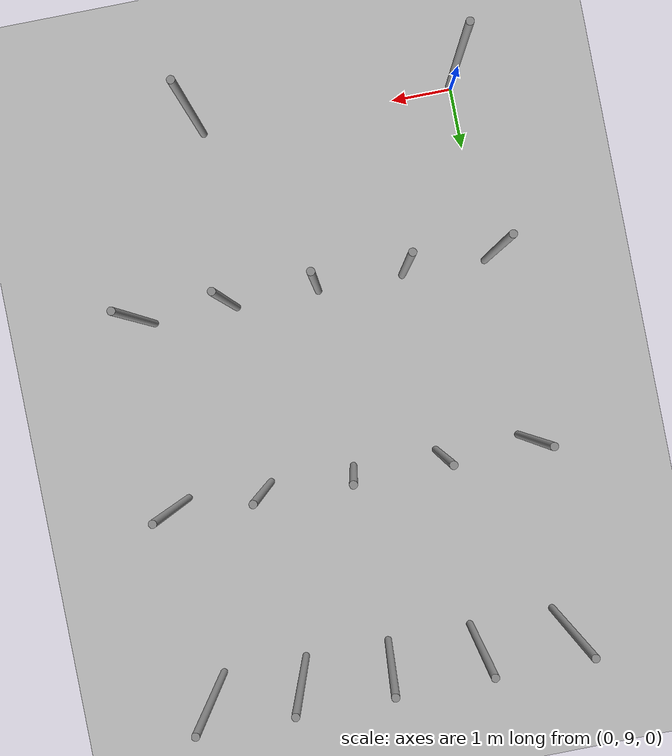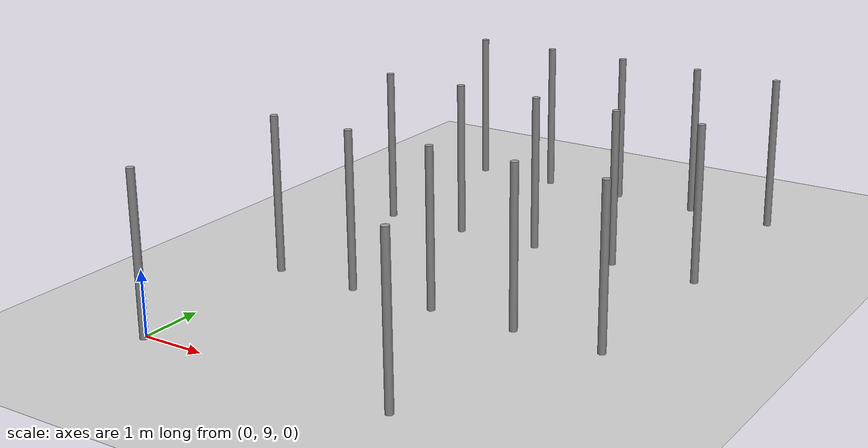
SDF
<sdf version="1.6">
 <world name="default">
  <model name="ground_plane">
   <static>1</static>
   <link name="link">
    <collision name="collision">
     <geometry><plane><normal>0 0 1</normal><size>100 100</size></plane></geometry>
     <surface><friction><ode><mu>100</mu><mu2>50</mu2></ode></friction></surface>
    </collision>
    <visual name="visual">
     <cast_shadows>0</cast_shadows>
     <geometry><plane><normal>0 0 1</normal><size>100 100</size></plane></geometry>
     <material>
      <script><uri>file://media/materials/scripts/gazebo.material</uri><name>Gazebo/Grey</name></script>
     </material>
    </visual>
   </link>
  </model>
  <model name="pole_0">
   <link name="link_0">
    <inertial>
     <mass>0.0364582</mass>
     <inertia>
      <ixx>0.00312124</ixx>
      <ixy>0</ixy>
      <ixz>0</ixz>
      <iyy>0.00312124</iyy>
      <iyz>0</iyz>
      <izz>0.00016615</izz>
     </inertia>
    </inertial>
    <visual name="visual">
     <geometry><cylinder><radius>0.06</radius><length>2.5</length></cylinder></geometry>
     <material>
      <lighting>1</lighting>
      <script><uri>file://media/materials/scripts/gazebo.material</uri><name>Gazebo/Grey</name></script>
      <ambient>0.3 0.3 0.3 1</ambient>
      <diffuse>0.7 0.7 0.7 1</diffuse>
      <specular>0.01 0.01 0.01 1</specular>
      <emissive>0 0 0 1</emissive>
      <shader type="vertex"><normal_map>__default__</normal_map></shader>
     </material>
    </visual>
    <collision name="collision">
     <geometry><cylinder><radius>0.06</radius><length>2.5</length></cylinder></geometry>
     <surface>
      <friction>
       <ode><mu>1</mu><mu2>1</mu2><fdir1>0 0 0</fdir1><slip1>0</slip1><slip2>0</slip2></ode>
       <torsional>
        <coefficient>1</coefficient>
        <patch_radius>0</patch_radius>
        <surface_radius>0</surface_radius>
        <use_patch_radius>1</use_patch_radius>
        <ode><slip>0</slip></ode>
       </torsional>
      </friction>
      <bounce><restitution_coefficient>0</restitution_coefficient><threshold>1e+06</threshold></bounce>
      <contact>
       <collide_without_contact>0</collide_without_contact>
       <collide_without_contact_bitmask>1</collide_without_contact_bitmask>
       <collide_bitmask>1</collide_bitmask>
       <ode>
        <soft_cfm>0</soft_cfm>
        <soft_erp>0.2</soft_erp>
        <kp>1e+13</kp>
        <kd>1</kd>
        <max_vel>0.01</max_vel>
        <min_depth>0</min_depth>
       </ode>
       <bullet>
        <split_impulse>1</split_impulse>
        <split_impulse_penetration_threshold>-0.01</split_impulse_penetration_threshold>
        <soft_cfm>0</soft_cfm>
        <soft_erp>0.2</soft_erp>
        <kp>1e+13</kp>
        <kd>1</kd>
       </bullet>
      </contact>
     </surface>
    </collision>
   </link>
   <static>0</static>
   <pose>0.013539 8.94158 1.25 -0 1e-06 -0.02062</pose>
  </model>
  <model name="pole_1">
   <link name="link_0">
    <inertial>
     <mass>0.0364582</mass>
     <inertia>
      <ixx>0.00312124</ixx>
      <ixy>0</ixy>
      <ixz>0</ixz>
      <iyy>0.00312124</iyy>
      <iyz>0</iyz>
      <izz>0.00016615</izz>
     </inertia>
    </inertial>
    <visual name="visual">
     <geometry><cylinder><radius>0.06</radius><length>2.5</length></cylinder></geometry>
     <material>
      <lighting>1</lighting>
      <script><uri>file://media/materials/scripts/gazebo.material</uri><name>Gazebo/Grey</name></script>
      <ambient>0.3 0.3 0.3 1</ambient>
      <diffuse>0.7 0.7 0.7 1</diffuse>
      <specular>0.01 0.01 0.01 1</specular>
      <emissive>0 0 0 1</emissive>
      <shader type="vertex"><normal_map>__default__</normal_map></shader>
     </material>
    </visual>
    <collision name="collision">
     <geometry><cylinder><radius>0.06</radius><length>2.5</length></cylinder></geometry>
     <surface>
      <friction>
       <ode><mu>1</mu><mu2>1</mu2><fdir1>0 0 0</fdir1><slip1>0</slip1><slip2>0</slip2></ode>
       <torsional>
        <coefficient>1</coefficient>
        <patch_radius>0</patch_radius>
        <surface_radius>0</surface_radius>
        <use_patch_radius>1</use_patch_radius>
        <ode><slip>0</slip></ode>
       </torsional>
      </friction>
      <bounce><restitution_coefficient>0</restitution_coefficient><threshold>1e+06</threshold></bounce>
      <contact>
       <collide_without_contact>0</collide_without_contact>
       <collide_without_contact_bitmask>1</collide_without_contact_bitmask>
       <collide_bitmask>1</collide_bitmask>
       <ode>
        <soft_cfm>0</soft_cfm>
        <soft_erp>0.2</soft_erp>
        <kp>1e+13</kp>
        <kd>1</kd>
        <max_vel>0.01</max_vel>
        <min_depth>0</min_depth>
       </ode>
       <bullet>
        <split_impulse>1</split_impulse>
        <split_impulse_penetration_threshold>-0.01</split_impulse_penetration_threshold>
        <soft_cfm>0</soft_cfm>
        <soft_erp>0.2</soft_erp>
        <kp>1e+13</kp>
        <kd>1</kd>
       </bullet>
      </contact>
     </surface>
    </collision>
   </link>
   <static>0</static>
   <pose>-0.008088 11.9215 1.25 -0 1e-06 -0.020103</pose>
  </model>
  <model name="pole_2">
   <link name="link_0">
    <inertial>
     <mass>0.0364582</mass>
     <inertia>
      <ixx>0.00312124</ixx>
      <ixy>0</ixy>
      <ixz>0</ixz>
      <iyy>0.00312124</iyy>
      <iyz>0</iyz>
      <izz>0.00016615</izz>
     </inertia>
    </inertial>
    <visual name="visual">
     <geometry><cylinder><radius>0.06</radius><length>2.5</length></cylinder></geometry>
     <material>
      <lighting>1</lighting>
      <script><uri>file://media/materials/scripts/gazebo.material</uri><name>Gazebo/Grey</name></script>
      <ambient>0.3 0.3 0.3 1</ambient>
      <diffuse>0.7 0.7 0.7 1</diffuse>
      <specular>0.01 0.01 0.01 1</specular>
      <emissive>0 0 0 1</emissive>
      <shader type="vertex"><normal_map>__default__</normal_map></shader>
     </material>
    </visual>
    <collision name="collision">
     <geometry><cylinder><radius>0.06</radius><length>2.5</length></cylinder></geometry>
     <surface>
      <friction>
       <ode><mu>1</mu><mu2>1</mu2><fdir1>0 0 0</fdir1><slip1>0</slip1><slip2>0</slip2></ode>
       <torsional>
        <coefficient>1</coefficient>
        <patch_radius>0</patch_radius>
        <surface_radius>0</surface_radius>
        <use_patch_radius>1</use_patch_radius>
        <ode><slip>0</slip></ode>
       </torsional>
      </friction>
      <bounce><restitution_coefficient>0</restitution_coefficient><threshold>1e+06</threshold></bounce>
      <contact>
       <collide_without_contact>0</collide_without_contact>
       <collide_without_contact_bitmask>1</collide_without_contact_bitmask>
       <collide_bitmask>1</collide_bitmask>
       <ode>
        <soft_cfm>0</soft_cfm>
        <soft_erp>0.2</soft_erp>
        <kp>1e+13</kp>
        <kd>1</kd>
        <max_vel>0.01</max_vel>
        <min_depth>0</min_depth>
       </ode>
       <bullet>
        <split_impulse>1</split_impulse>
        <split_impulse_penetration_threshold>-0.01</split_impulse_penetration_threshold>
        <soft_cfm>0</soft_cfm>
        <soft_erp>0.2</soft_erp>
        <kp>1e+13</kp>
        <kd>1</kd>
       </bullet>
      </contact>
     </surface>
    </collision>
   </link>
   <static>0</static>
   <pose>2.1e-05 14.8944 1.24999 0 -1e-06 0.217518</pose>
  </model>
  <model name="pole_18">
   <link name="link_0">
    <inertial>
     <mass>0.0364582</mass>
     <inertia>
      <ixx>0.00312124</ixx>
      <ixy>0</ixy>
      <ixz>0</ixz>
      <iyy>0.00312124</iyy>
      <iyz>0</iyz>
      <izz>0.00016615</izz>
     </inertia>
    </inertial>
    <visual name="visual">
     <geometry><cylinder><radius>0.06</radius><length>2.5</length></cylinder></geometry>
     <material>
      <lighting>1</lighting>
      <script><uri>file://media/materials/scripts/gazebo.material</uri><name>Gazebo/Grey</name></script>
      <ambient>0.3 0.3 0.3 1</ambient>
      <diffuse>0.7 0.7 0.7 1</diffuse>
      <specular>0.01 0.01 0.01 1</specular>
      <emissive>0 0 0 1</emissive>
      <shader type="vertex"><normal_map>__default__</normal_map></shader>
     </material>
    </visual>
    <collision name="collision">
     <geometry><cylinder><radius>0.06</radius><length>2.5</length></cylinder></geometry>
     <surface>
      <friction>
       <ode><mu>1</mu><mu2>1</mu2><fdir1>0 0 0</fdir1><slip1>0</slip1><slip2>0</slip2></ode>
       <torsional>
        <coefficient>1</coefficient>
        <patch_radius>0</patch_radius>
        <surface_radius>0</surface_radius>
        <use_patch_radius>1</use_patch_radius>
        <ode><slip>0</slip></ode>
       </torsional>
      </friction>
      <bounce><restitution_coefficient>0</restitution_coefficient><threshold>1e+06</threshold></bounce>
      <contact>
       <collide_without_contact>0</collide_without_contact>
       <collide_without_contact_bitmask>1</collide_without_contact_bitmask>
       <collide_bitmask>1</collide_bitmask>
       <ode>
        <soft_cfm>0</soft_cfm>
        <soft_erp>0.2</soft_erp>
        <kp>1e+13</kp>
        <kd>1</kd>
        <max_vel>0.01</max_vel>
        <min_depth>0</min_depth>
       </ode>
       <bullet>
        <split_impulse>1</split_impulse>
        <split_impulse_penetration_threshold>-0.01</split_impulse_penetration_threshold>
        <soft_cfm>0</soft_cfm>
        <soft_erp>0.2</soft_erp>
        <kp>1e+13</kp>
        <kd>1</kd>
       </bullet>
      </contact>
     </surface>
    </collision>
   </link>
   <static>0</static>
   <pose>4.20388 8.94097 1.24999 -1e-06 -0 -0.010298</pose>
  </model>
  <model name="pole_20">
   <link name="link_0">
    <inertial>
     <mass>0.0364582</mass>
     <inertia>
      <ixx>0.00312124</ixx>
      <ixy>0</ixy>
      <ixz>0</ixz>
      <iyy>0.00312124</iyy>
      <iyz>0</iyz>
      <izz>0.00016615</izz>
     </inertia>
    </inertial>
    <visual name="visual">
     <geometry><cylinder><radius>0.06</radius><length>2.5</length></cylinder></geometry>
     <material>
      <lighting>1</lighting>
      <script><uri>file://media/materials/scripts/gazebo.material</uri><name>Gazebo/Grey</name></script>
      <ambient>0.3 0.3 0.3 1</ambient>
      <diffuse>0.7 0.7 0.7 1</diffuse>
      <specular>0.01 0.01 0.01 1</specular>
      <emissive>0 0 0 1</emissive>
      <shader type="vertex"><normal_map>__default__</normal_map></shader>
     </material>
    </visual>
    <collision name="collision">
     <geometry><cylinder><radius>0.06</radius><length>2.5</length></cylinder></geometry>
     <surface>
      <friction>
       <ode><mu>1</mu><mu2>1</mu2><fdir1>0 0 0</fdir1><slip1>0</slip1><slip2>0</slip2></ode>
       <torsional>
        <coefficient>1</coefficient>
        <patch_radius>0</patch_radius>
        <surface_radius>0</surface_radius>
        <use_patch_radius>1</use_patch_radius>
        <ode><slip>0</slip></ode>
       </torsional>
      </friction>
      <bounce><restitution_coefficient>0</restitution_coefficient><threshold>1e+06</threshold></bounce>
      <contact>
       <collide_without_contact>0</collide_without_contact>
       <collide_without_contact_bitmask>1</collide_without_contact_bitmask>
       <collide_bitmask>1</collide_bitmask>
       <ode>
        <soft_cfm>0</soft_cfm>
        <soft_erp>0.2</soft_erp>
        <kp>1e+13</kp>
        <kd>1</kd>
        <max_vel>0.01</max_vel>
        <min_depth>0</min_depth>
       </ode>
       <bullet>
        <split_impulse>1</split_impulse>
        <split_impulse_penetration_threshold>-0.01</split_impulse_penetration_threshold>
        <soft_cfm>0</soft_cfm>
        <soft_erp>0.2</soft_erp>
        <kp>1e+13</kp>
        <kd>1</kd>
       </bullet>
      </contact>
     </surface>
    </collision>
   </link>
   <static>0</static>
   <pose>1.39582 11.901 1.24999 -1e-06 -0 -0.007027</pose>
  </model>
  <model name="pole_21">
   <link name="link_0">
    <inertial>
     <mass>0.0364582</mass>
     <inertia>
      <ixx>0.00312124</ixx>
      <ixy>0</ixy>
      <ixz>0</ixz>
      <iyy>0.00312124</iyy>
      <iyz>0</iyz>
      <izz>0.00016615</izz>
     </inertia>
    </inertial>
    <visual name="visual">
     <geometry><cylinder><radius>0.06</radius><length>2.5</length></cylinder></geometry>
     <material>
      <lighting>1</lighting>
      <script><uri>file://media/materials/scripts/gazebo.material</uri><name>Gazebo/Grey</name></script>
      <ambient>0.3 0.3 0.3 1</ambient>
      <diffuse>0.7 0.7 0.7 1</diffuse>
      <specular>0.01 0.01 0.01 1</specular>
      <emissive>0 0 0 1</emissive>
      <shader type="vertex"><normal_map>__default__</normal_map></shader>
     </material>
    </visual>
    <collision name="collision">
     <geometry><cylinder><radius>0.06</radius><length>2.5</length></cylinder></geometry>
     <surface>
      <friction>
       <ode><mu>1</mu><mu2>1</mu2><fdir1>0 0 0</fdir1><slip1>0</slip1><slip2>0</slip2></ode>
       <torsional>
        <coefficient>1</coefficient>
        <patch_radius>0</patch_radius>
        <surface_radius>0</surface_radius>
        <use_patch_radius>1</use_patch_radius>
        <ode><slip>0</slip></ode>
       </torsional>
      </friction>
      <bounce><restitution_coefficient>0</restitution_coefficient><threshold>1e+06</threshold></bounce>
      <contact>
       <collide_without_contact>0</collide_without_contact>
       <collide_without_contact_bitmask>1</collide_without_contact_bitmask>
       <collide_bitmask>1</collide_bitmask>
       <ode>
        <soft_cfm>0</soft_cfm>
        <soft_erp>0.2</soft_erp>
        <kp>1e+13</kp>
        <kd>1</kd>
        <max_vel>0.01</max_vel>
        <min_depth>0</min_depth>
       </ode>
       <bullet>
        <split_impulse>1</split_impulse>
        <split_impulse_penetration_threshold>-0.01</split_impulse_penetration_threshold>
        <soft_cfm>0</soft_cfm>
        <soft_erp>0.2</soft_erp>
        <kp>1e+13</kp>
        <kd>1</kd>
       </bullet>
      </contact>
     </surface>
    </collision>
   </link>
   <static>0</static>
   <pose>2.82216 11.8927 1.24998 -0.000101 0.000197 0.276274</pose>
  </model>
  <model name="pole_22">
   <link name="link_0">
    <inertial>
     <mass>0.0364582</mass>
     <inertia>
      <ixx>0.00312124</ixx>
      <ixy>0</ixy>
      <ixz>0</ixz>
      <iyy>0.00312124</iyy>
      <iyz>0</iyz>
      <izz>0.00016615</izz>
     </inertia>
    </inertial>
    <visual name="visual">
     <geometry><cylinder><radius>0.06</radius><length>2.5</length></cylinder></geometry>
     <material>
      <lighting>1</lighting>
      <script><uri>file://media/materials/scripts/gazebo.material</uri><name>Gazebo/Grey</name></script>
      <ambient>0.3 0.3 0.3 1</ambient>
      <diffuse>0.7 0.7 0.7 1</diffuse>
      <specular>0.01 0.01 0.01 1</specular>
      <emissive>0 0 0 1</emissive>
      <shader type="vertex"><normal_map>__default__</normal_map></shader>
     </material>
    </visual>
    <collision name="collision">
     <geometry><cylinder><radius>0.06</radius><length>2.5</length></cylinder></geometry>
     <surface>
      <friction>
       <ode><mu>1</mu><mu2>1</mu2><fdir1>0 0 0</fdir1><slip1>0</slip1><slip2>0</slip2></ode>
       <torsional>
        <coefficient>1</coefficient>
        <patch_radius>0</patch_radius>
        <surface_radius>0</surface_radius>
        <use_patch_radius>1</use_patch_radius>
        <ode><slip>0</slip></ode>
       </torsional>
      </friction>
      <bounce><restitution_coefficient>0</restitution_coefficient><threshold>1e+06</threshold></bounce>
      <contact>
       <collide_without_contact>0</collide_without_contact>
       <collide_without_contact_bitmask>1</collide_without_contact_bitmask>
       <collide_bitmask>1</collide_bitmask>
       <ode>
        <soft_cfm>0</soft_cfm>
        <soft_erp>0.2</soft_erp>
        <kp>1e+13</kp>
        <kd>1</kd>
        <max_vel>0.01</max_vel>
        <min_depth>0</min_depth>
       </ode>
       <bullet>
        <split_impulse>1</split_impulse>
        <split_impulse_penetration_threshold>-0.01</split_impulse_penetration_threshold>
        <soft_cfm>0</soft_cfm>
        <soft_erp>0.2</soft_erp>
        <kp>1e+13</kp>
        <kd>1</kd>
       </bullet>
      </contact>
     </surface>
    </collision>
   </link>
   <static>0</static>
   <pose>4.2121 11.9008 1.24999 -1e-06 -0 -0.006714</pose>
  </model>
  <model name="pole_23">
   <link name="link_0">
    <inertial>
     <mass>0.0364582</mass>
     <inertia>
      <ixx>0.00312124</ixx>
      <ixy>0</ixy>
      <ixz>0</ixz>
      <iyy>0.00312124</iyy>
      <iyz>0</iyz>
      <izz>0.00016615</izz>
     </inertia>
    </inertial>
    <visual name="visual">
     <geometry><cylinder><radius>0.06</radius><length>2.5</length></cylinder></geometry>
     <material>
      <lighting>1</lighting>
      <script><uri>file://media/materials/scripts/gazebo.material</uri><name>Gazebo/Grey</name></script>
      <ambient>0.3 0.3 0.3 1</ambient>
      <diffuse>0.7 0.7 0.7 1</diffuse>
      <specular>0.01 0.01 0.01 1</specular>
      <emissive>0 0 0 1</emissive>
      <shader type="vertex"><normal_map>__default__</normal_map></shader>
     </material>
    </visual>
    <collision name="collision">
     <geometry><cylinder><radius>0.06</radius><length>2.5</length></cylinder></geometry>
     <surface>
      <friction>
       <ode><mu>1</mu><mu2>1</mu2><fdir1>0 0 0</fdir1><slip1>0</slip1><slip2>0</slip2></ode>
       <torsional>
        <coefficient>1</coefficient>
        <patch_radius>0</patch_radius>
        <surface_radius>0</surface_radius>
        <use_patch_radius>1</use_patch_radius>
        <ode><slip>0</slip></ode>
       </torsional>
      </friction>
      <bounce><restitution_coefficient>0</restitution_coefficient><threshold>1e+06</threshold></bounce>
      <contact>
       <collide_without_contact>0</collide_without_contact>
       <collide_without_contact_bitmask>1</collide_without_contact_bitmask>
       <collide_bitmask>1</collide_bitmask>
       <ode>
        <soft_cfm>0</soft_cfm>
        <soft_erp>0.2</soft_erp>
        <kp>1e+13</kp>
        <kd>1</kd>
        <max_vel>0.01</max_vel>
        <min_depth>0</min_depth>
       </ode>
       <bullet>
        <split_impulse>1</split_impulse>
        <split_impulse_penetration_threshold>-0.01</split_impulse_penetration_threshold>
        <soft_cfm>0</soft_cfm>
        <soft_erp>0.2</soft_erp>
        <kp>1e+13</kp>
        <kd>1</kd>
       </bullet>
      </contact>
     </surface>
    </collision>
   </link>
   <static>0</static>
   <pose>5.6161 11.9007 1.24999 0 3e-06 -0.007212</pose>
  </model>
  <model name="pole_24">
   <link name="link_0">
    <inertial>
     <mass>0.0364582</mass>
     <inertia>
      <ixx>0.00312124</ixx>
      <ixy>0</ixy>
      <ixz>0</ixz>
      <iyy>0.00312124</iyy>
      <iyz>0</iyz>
      <izz>0.00016615</izz>
     </inertia>
    </inertial>
    <visual name="visual">
     <geometry><cylinder><radius>0.06</radius><length>2.5</length></cylinder></geometry>
     <material>
      <lighting>1</lighting>
      <script><uri>file://media/materials/scripts/gazebo.material</uri><name>Gazebo/Grey</name></script>
      <ambient>0.3 0.3 0.3 1</ambient>
      <diffuse>0.7 0.7 0.7 1</diffuse>
      <specular>0.01 0.01 0.01 1</specular>
      <emissive>0 0 0 1</emissive>
      <shader type="vertex"><normal_map>__default__</normal_map></shader>
     </material>
    </visual>
    <collision name="collision">
     <geometry><cylinder><radius>0.06</radius><length>2.5</length></cylinder></geometry>
     <surface>
      <friction>
       <ode><mu>1</mu><mu2>1</mu2><fdir1>0 0 0</fdir1><slip1>0</slip1><slip2>0</slip2></ode>
       <torsional>
        <coefficient>1</coefficient>
        <patch_radius>0</patch_radius>
        <surface_radius>0</surface_radius>
        <use_patch_radius>1</use_patch_radius>
        <ode><slip>0</slip></ode>
       </torsional>
      </friction>
      <bounce><restitution_coefficient>0</restitution_coefficient><threshold>1e+06</threshold></bounce>
      <contact>
       <collide_without_contact>0</collide_without_contact>
       <collide_without_contact_bitmask>1</collide_without_contact_bitmask>
       <collide_bitmask>1</collide_bitmask>
       <ode>
        <soft_cfm>0</soft_cfm>
        <soft_erp>0.2</soft_erp>
        <kp>1e+13</kp>
        <kd>1</kd>
        <max_vel>0.01</max_vel>
        <min_depth>0</min_depth>
       </ode>
       <bullet>
        <split_impulse>1</split_impulse>
        <split_impulse_penetration_threshold>-0.01</split_impulse_penetration_threshold>
        <soft_cfm>0</soft_cfm>
        <soft_erp>0.2</soft_erp>
        <kp>1e+13</kp>
        <kd>1</kd>
       </bullet>
      </contact>
     </surface>
    </collision>
   </link>
   <static>0</static>
   <pose>1.40427 14.8809 1.25 -1e-06 -0 0.018598</pose>
  </model>
  <model name="pole_25">
   <link name="link_0">
    <inertial>
     <mass>0.0364582</mass>
     <inertia>
      <ixx>0.00312124</ixx>
      <ixy>0</ixy>
      <ixz>0</ixz>
      <iyy>0.00312124</iyy>
      <iyz>0</iyz>
      <izz>0.00016615</izz>
     </inertia>
    </inertial>
    <visual name="visual">
     <geometry><cylinder><radius>0.06</radius><length>2.5</length></cylinder></geometry>
     <material>
      <lighting>1</lighting>
      <script><uri>file://media/materials/scripts/gazebo.material</uri><name>Gazebo/Grey</name></script>
      <ambient>0.3 0.3 0.3 1</ambient>
      <diffuse>0.7 0.7 0.7 1</diffuse>
      <specular>0.01 0.01 0.01 1</specular>
      <emissive>0 0 0 1</emissive>
      <shader type="vertex"><normal_map>__default__</normal_map></shader>
     </material>
    </visual>
    <collision name="collision">
     <geometry><cylinder><radius>0.06</radius><length>2.5</length></cylinder></geometry>
     <surface>
      <friction>
       <ode><mu>1</mu><mu2>1</mu2><fdir1>0 0 0</fdir1><slip1>0</slip1><slip2>0</slip2></ode>
       <torsional>
        <coefficient>1</coefficient>
        <patch_radius>0</patch_radius>
        <surface_radius>0</surface_radius>
        <use_patch_radius>1</use_patch_radius>
        <ode><slip>0</slip></ode>
       </torsional>
      </friction>
      <bounce><restitution_coefficient>0</restitution_coefficient><threshold>1e+06</threshold></bounce>
      <contact>
       <collide_without_contact>0</collide_without_contact>
       <collide_without_contact_bitmask>1</collide_without_contact_bitmask>
       <collide_bitmask>1</collide_bitmask>
       <ode>
        <soft_cfm>0</soft_cfm>
        <soft_erp>0.2</soft_erp>
        <kp>1e+13</kp>
        <kd>1</kd>
        <max_vel>0.01</max_vel>
        <min_depth>0</min_depth>
       </ode>
       <bullet>
        <split_impulse>1</split_impulse>
        <split_impulse_penetration_threshold>-0.01</split_impulse_penetration_threshold>
        <soft_cfm>0</soft_cfm>
        <soft_erp>0.2</soft_erp>
        <kp>1e+13</kp>
        <kd>1</kd>
       </bullet>
      </contact>
     </surface>
    </collision>
   </link>
   <static>0</static>
   <pose>2.80776 14.8803 1.24999 -1e-06 4e-06 -0.01276</pose>
  </model>
  <model name="pole_26">
   <link name="link_0">
    <inertial>
     <mass>0.0364582</mass>
     <inertia>
      <ixx>0.00312124</ixx>
      <ixy>0</ixy>
      <ixz>0</ixz>
      <iyy>0.00312124</iyy>
      <iyz>0</iyz>
      <izz>0.00016615</izz>
     </inertia>
    </inertial>
    <visual name="visual">
     <geometry><cylinder><radius>0.06</radius><length>2.5</length></cylinder></geometry>
     <material>
      <lighting>1</lighting>
      <script><uri>file://media/materials/scripts/gazebo.material</uri><name>Gazebo/Grey</name></script>
      <ambient>0.3 0.3 0.3 1</ambient>
      <diffuse>0.7 0.7 0.7 1</diffuse>
      <specular>0.01 0.01 0.01 1</specular>
      <emissive>0 0 0 1</emissive>
      <shader type="vertex"><normal_map>__default__</normal_map></shader>
     </material>
    </visual>
    <collision name="collision">
     <geometry><cylinder><radius>0.06</radius><length>2.5</length></cylinder></geometry>
     <surface>
      <friction>
       <ode><mu>1</mu><mu2>1</mu2><fdir1>0 0 0</fdir1><slip1>0</slip1><slip2>0</slip2></ode>
       <torsional>
        <coefficient>1</coefficient>
        <patch_radius>0</patch_radius>
        <surface_radius>0</surface_radius>
        <use_patch_radius>1</use_patch_radius>
        <ode><slip>0</slip></ode>
       </torsional>
      </friction>
      <bounce><restitution_coefficient>0</restitution_coefficient><threshold>1e+06</threshold></bounce>
      <contact>
       <collide_without_contact>0</collide_without_contact>
       <collide_without_contact_bitmask>1</collide_without_contact_bitmask>
       <collide_bitmask>1</collide_bitmask>
       <ode>
        <soft_cfm>0</soft_cfm>
        <soft_erp>0.2</soft_erp>
        <kp>1e+13</kp>
        <kd>1</kd>
        <max_vel>0.01</max_vel>
        <min_depth>0</min_depth>
       </ode>
       <bullet>
        <split_impulse>1</split_impulse>
        <split_impulse_penetration_threshold>-0.01</split_impulse_penetration_threshold>
        <soft_cfm>0</soft_cfm>
        <soft_erp>0.2</soft_erp>
        <kp>1e+13</kp>
        <kd>1</kd>
       </bullet>
      </contact>
     </surface>
    </collision>
   </link>
   <static>0</static>
   <pose>4.21208 14.8805 1.25 -1e-06 1e-06 -0.008921</pose>
  </model>
  <model name="pole_27">
   <link name="link_0">
    <inertial>
     <mass>0.0364582</mass>
     <inertia>
      <ixx>0.00312124</ixx>
      <ixy>0</ixy>
      <ixz>0</ixz>
      <iyy>0.00312124</iyy>
      <iyz>0</iyz>
      <izz>0.00016615</izz>
     </inertia>
    </inertial>
    <visual name="visual">
     <geometry><cylinder><radius>0.06</radius><length>2.5</length></cylinder></geometry>
     <material>
      <lighting>1</lighting>
      <script><uri>file://media/materials/scripts/gazebo.material</uri><name>Gazebo/Grey</name></script>
      <ambient>0.3 0.3 0.3 1</ambient>
      <diffuse>0.7 0.7 0.7 1</diffuse>
      <specular>0.01 0.01 0.01 1</specular>
      <emissive>0 0 0 1</emissive>
      <shader type="vertex"><normal_map>__default__</normal_map></shader>
     </material>
    </visual>
    <collision name="collision">
     <geometry><cylinder><radius>0.06</radius><length>2.5</length></cylinder></geometry>
     <surface>
      <friction>
       <ode><mu>1</mu><mu2>1</mu2><fdir1>0 0 0</fdir1><slip1>0</slip1><slip2>0</slip2></ode>
       <torsional>
        <coefficient>1</coefficient>
        <patch_radius>0</patch_radius>
        <surface_radius>0</surface_radius>
        <use_patch_radius>1</use_patch_radius>
        <ode><slip>0</slip></ode>
       </torsional>
      </friction>
      <bounce><restitution_coefficient>0</restitution_coefficient><threshold>1e+06</threshold></bounce>
      <contact>
       <collide_without_contact>0</collide_without_contact>
       <collide_without_contact_bitmask>1</collide_without_contact_bitmask>
       <collide_bitmask>1</collide_bitmask>
       <ode>
        <soft_cfm>0</soft_cfm>
        <soft_erp>0.2</soft_erp>
        <kp>1e+13</kp>
        <kd>1</kd>
        <max_vel>0.01</max_vel>
        <min_depth>0</min_depth>
       </ode>
       <bullet>
        <split_impulse>1</split_impulse>
        <split_impulse_penetration_threshold>-0.01</split_impulse_penetration_threshold>
        <soft_cfm>0</soft_cfm>
        <soft_erp>0.2</soft_erp>
        <kp>1e+13</kp>
        <kd>1</kd>
       </bullet>
      </contact>
     </surface>
    </collision>
   </link>
   <static>0</static>
   <pose>5.62005 14.8804 1.25 -0 1e-06 -0.005686</pose>
  </model>
  <model name="pole_28">
   <link name="link_0">
    <inertial>
     <mass>0.0364582</mass>
     <inertia>
      <ixx>0.00312124</ixx>
      <ixy>0</ixy>
      <ixz>0</ixz>
      <iyy>0.00312124</iyy>
      <iyz>0</iyz>
      <izz>0.00016615</izz>
     </inertia>
    </inertial>
    <visual name="visual">
     <geometry><cylinder><radius>0.06</radius><length>2.5</length></cylinder></geometry>
     <material>
      <lighting>1</lighting>
      <script><uri>file://media/materials/scripts/gazebo.material</uri><name>Gazebo/Grey</name></script>
      <ambient>0.3 0.3 0.3 1</ambient>
      <diffuse>0.7 0.7 0.7 1</diffuse>
      <specular>0.01 0.01 0.01 1</specular>
      <emissive>0 0 0 1</emissive>
      <shader type="vertex"><normal_map>__default__</normal_map></shader>
     </material>
    </visual>
    <collision name="collision">
     <geometry><cylinder><radius>0.06</radius><length>2.5</length></cylinder></geometry>
     <surface>
      <friction>
       <ode><mu>1</mu><mu2>1</mu2><fdir1>0 0 0</fdir1><slip1>0</slip1><slip2>0</slip2></ode>
       <torsional>
        <coefficient>1</coefficient>
        <patch_radius>0</patch_radius>
        <surface_radius>0</surface_radius>
        <use_patch_radius>1</use_patch_radius>
        <ode><slip>0</slip></ode>
       </torsional>
      </friction>
      <bounce><restitution_coefficient>0</restitution_coefficient><threshold>1e+06</threshold></bounce>
      <contact>
       <collide_without_contact>0</collide_without_contact>
       <collide_without_contact_bitmask>1</collide_without_contact_bitmask>
       <collide_bitmask>1</collide_bitmask>
       <ode>
        <soft_cfm>0</soft_cfm>
        <soft_erp>0.2</soft_erp>
        <kp>1e+13</kp>
        <kd>1</kd>
        <max_vel>0.01</max_vel>
        <min_depth>0</min_depth>
       </ode>
       <bullet>
        <split_impulse>1</split_impulse>
        <split_impulse_penetration_threshold>-0.01</split_impulse_penetration_threshold>
        <soft_cfm>0</soft_cfm>
        <soft_erp>0.2</soft_erp>
        <kp>1e+13</kp>
        <kd>1</kd>
       </bullet>
      </contact>
     </surface>
    </collision>
   </link>
   <static>0</static>
   <pose>3e-05 17.8601 1.25 -1e-06 1e-06 -0.003057</pose>
  </model>
  <model name="pole_29">
   <link name="link_0">
    <inertial>
     <mass>0.0364582</mass>
     <inertia>
      <ixx>0.00312124</ixx>
      <ixy>0</ixy>
      <ixz>0</ixz>
      <iyy>0.00312124</iyy>
      <iyz>0</iyz>
      <izz>0.00016615</izz>
     </inertia>
    </inertial>
    <visual name="visual">
     <geometry><cylinder><radius>0.06</radius><length>2.5</length></cylinder></geometry>
     <material>
      <lighting>1</lighting>
      <script><uri>file://media/materials/scripts/gazebo.material</uri><name>Gazebo/Grey</name></script>
      <ambient>0.3 0.3 0.3 1</ambient>
      <diffuse>0.7 0.7 0.7 1</diffuse>
      <specular>0.01 0.01 0.01 1</specular>
      <emissive>0 0 0 1</emissive>
      <shader type="vertex"><normal_map>__default__</normal_map></shader>
     </material>
    </visual>
    <collision name="collision">
     <geometry><cylinder><radius>0.06</radius><length>2.5</length></cylinder></geometry>
     <surface>
      <friction>
       <ode><mu>1</mu><mu2>1</mu2><fdir1>0 0 0</fdir1><slip1>0</slip1><slip2>0</slip2></ode>
       <torsional>
        <coefficient>1</coefficient>
        <patch_radius>0</patch_radius>
        <surface_radius>0</surface_radius>
        <use_patch_radius>1</use_patch_radius>
        <ode><slip>0</slip></ode>
       </torsional>
      </friction>
      <bounce><restitution_coefficient>0</restitution_coefficient><threshold>1e+06</threshold></bounce>
      <contact>
       <collide_without_contact>0</collide_without_contact>
       <collide_without_contact_bitmask>1</collide_without_contact_bitmask>
       <collide_bitmask>1</collide_bitmask>
       <ode>
        <soft_cfm>0</soft_cfm>
        <soft_erp>0.2</soft_erp>
        <kp>1e+13</kp>
        <kd>1</kd>
        <max_vel>0.01</max_vel>
        <min_depth>0</min_depth>
       </ode>
       <bullet>
        <split_impulse>1</split_impulse>
        <split_impulse_penetration_threshold>-0.01</split_impulse_penetration_threshold>
        <soft_cfm>0</soft_cfm>
        <soft_erp>0.2</soft_erp>
        <kp>1e+13</kp>
        <kd>1</kd>
       </bullet>
      </contact>
     </surface>
    </collision>
   </link>
   <static>0</static>
   <pose>1.4037 17.8581 1.24998 -0.000137 0.000174 0.082472</pose>
  </model>
  <model name="pole_30">
   <link name="link_0">
    <inertial>
     <mass>0.0364582</mass>
     <inertia>
      <ixx>0.00312124</ixx>
      <ixy>0</ixy>
      <ixz>0</ixz>
      <iyy>0.00312124</iyy>
      <iyz>0</iyz>
      <izz>0.00016615</izz>
     </inertia>
    </inertial>
    <visual name="visual">
     <geometry><cylinder><radius>0.06</radius><length>2.5</length></cylinder></geometry>
     <material>
      <lighting>1</lighting>
      <script><uri>file://media/materials/scripts/gazebo.material</uri><name>Gazebo/Grey</name></script>
      <ambient>0.3 0.3 0.3 1</ambient>
      <diffuse>0.7 0.7 0.7 1</diffuse>
      <specular>0.01 0.01 0.01 1</specular>
      <emissive>0 0 0 1</emissive>
      <shader type="vertex"><normal_map>__default__</normal_map></shader>
     </material>
    </visual>
    <collision name="collision">
     <geometry><cylinder><radius>0.06</radius><length>2.5</length></cylinder></geometry>
     <surface>
      <friction>
       <ode><mu>1</mu><mu2>1</mu2><fdir1>0 0 0</fdir1><slip1>0</slip1><slip2>0</slip2></ode>
       <torsional>
        <coefficient>1</coefficient>
        <patch_radius>0</patch_radius>
        <surface_radius>0</surface_radius>
        <use_patch_radius>1</use_patch_radius>
        <ode><slip>0</slip></ode>
       </torsional>
      </friction>
      <bounce><restitution_coefficient>0</restitution_coefficient><threshold>1e+06</threshold></bounce>
      <contact>
       <collide_without_contact>0</collide_without_contact>
       <collide_without_contact_bitmask>1</collide_without_contact_bitmask>
       <collide_bitmask>1</collide_bitmask>
       <ode>
        <soft_cfm>0</soft_cfm>
        <soft_erp>0.2</soft_erp>
        <kp>1e+13</kp>
        <kd>1</kd>
        <max_vel>0.01</max_vel>
        <min_depth>0</min_depth>
       </ode>
       <bullet>
        <split_impulse>1</split_impulse>
        <split_impulse_penetration_threshold>-0.01</split_impulse_penetration_threshold>
        <soft_cfm>0</soft_cfm>
        <soft_erp>0.2</soft_erp>
        <kp>1e+13</kp>
        <kd>1</kd>
       </bullet>
      </contact>
     </surface>
    </collision>
   </link>
   <static>0</static>
   <pose>2.80011 17.8603 1.24999 -9e-06 0.000313 -0.02525</pose>
  </model>
  <model name="pole_31">
   <link name="link_0">
    <inertial>
     <mass>0.0364582</mass>
     <inertia>
      <ixx>0.00312124</ixx>
      <ixy>0</ixy>
      <ixz>0</ixz>
      <iyy>0.00312124</iyy>
      <iyz>0</iyz>
      <izz>0.00016615</izz>
     </inertia>
    </inertial>
    <visual name="visual">
     <geometry><cylinder><radius>0.06</radius><length>2.5</length></cylinder></geometry>
     <material>
      <lighting>1</lighting>
      <script><uri>file://media/materials/scripts/gazebo.material</uri><name>Gazebo/Grey</name></script>
      <ambient>0.3 0.3 0.3 1</ambient>
      <diffuse>0.7 0.7 0.7 1</diffuse>
      <specular>0.01 0.01 0.01 1</specular>
      <emissive>0 0 0 1</emissive>
      <shader type="vertex"><normal_map>__default__</normal_map></shader>
     </material>
    </visual>
    <collision name="collision">
     <geometry><cylinder><radius>0.06</radius><length>2.5</length></cylinder></geometry>
     <surface>
      <friction>
       <ode><mu>1</mu><mu2>1</mu2><fdir1>0 0 0</fdir1><slip1>0</slip1><slip2>0</slip2></ode>
       <torsional>
        <coefficient>1</coefficient>
        <patch_radius>0</patch_radius>
        <surface_radius>0</surface_radius>
        <use_patch_radius>1</use_patch_radius>
        <ode><slip>0</slip></ode>
       </torsional>
      </friction>
      <bounce><restitution_coefficient>0</restitution_coefficient><threshold>1e+06</threshold></bounce>
      <contact>
       <collide_without_contact>0</collide_without_contact>
       <collide_without_contact_bitmask>1</collide_without_contact_bitmask>
       <collide_bitmask>1</collide_bitmask>
       <ode>
        <soft_cfm>0</soft_cfm>
        <soft_erp>0.2</soft_erp>
        <kp>1e+13</kp>
        <kd>1</kd>
        <max_vel>0.01</max_vel>
        <min_depth>0</min_depth>
       </ode>
       <bullet>
        <split_impulse>1</split_impulse>
        <split_impulse_penetration_threshold>-0.01</split_impulse_penetration_threshold>
        <soft_cfm>0</soft_cfm>
        <soft_erp>0.2</soft_erp>
        <kp>1e+13</kp>
        <kd>1</kd>
       </bullet>
      </contact>
     </surface>
    </collision>
   </link>
   <static>0</static>
   <pose>4.20001 17.86 1.25 -1e-06 -1e-06 -0.001048</pose>
  </model>
  <model name="pole_32">
   <link name="link_0">
    <inertial>
     <mass>0.0364582</mass>
     <inertia>
      <ixx>0.00312124</ixx>
      <ixy>0</ixy>
      <ixz>0</ixz>
      <iyy>0.00312124</iyy>
      <iyz>0</iyz>
      <izz>0.00016615</izz>
     </inertia>
    </inertial>
    <visual name="visual">
     <geometry><cylinder><radius>0.06</radius><length>2.5</length></cylinder></geometry>
     <material>
      <lighting>1</lighting>
      <script><uri>file://media/materials/scripts/gazebo.material</uri><name>Gazebo/Grey</name></script>
      <ambient>0.3 0.3 0.3 1</ambient>
      <diffuse>0.7 0.7 0.7 1</diffuse>
      <specular>0.01 0.01 0.01 1</specular>
      <emissive>0 0 0 1</emissive>
      <shader type="vertex"><normal_map>__default__</normal_map></shader>
     </material>
    </visual>
    <collision name="collision">
     <geometry><cylinder><radius>0.06</radius><length>2.5</length></cylinder></geometry>
     <surface>
      <friction>
       <ode><mu>1</mu><mu2>1</mu2><fdir1>0 0 0</fdir1><slip1>0</slip1><slip2>0</slip2></ode>
       <torsional>
        <coefficient>1</coefficient>
        <patch_radius>0</patch_radius>
        <surface_radius>0</surface_radius>
        <use_patch_radius>1</use_patch_radius>
        <ode><slip>0</slip></ode>
       </torsional>
      </friction>
      <bounce><restitution_coefficient>0</restitution_coefficient><threshold>1e+06</threshold></bounce>
      <contact>
       <collide_without_contact>0</collide_without_contact>
       <collide_without_contact_bitmask>1</collide_without_contact_bitmask>
       <collide_bitmask>1</collide_bitmask>
       <ode>
        <soft_cfm>0</soft_cfm>
        <soft_erp>0.2</soft_erp>
        <kp>1e+13</kp>
        <kd>1</kd>
        <max_vel>0.01</max_vel>
        <min_depth>0</min_depth>
       </ode>
       <bullet>
        <split_impulse>1</split_impulse>
        <split_impulse_penetration_threshold>-0.01</split_impulse_penetration_threshold>
        <soft_cfm>0</soft_cfm>
        <soft_erp>0.2</soft_erp>
        <kp>1e+13</kp>
        <kd>1</kd>
       </bullet>
      </contact>
     </surface>
    </collision>
   </link>
   <static>0</static>
   <pose>5.60001 17.86 1.24999 0 1e-06 -0.001232</pose>
  </model>
 </world>
</sdf>
